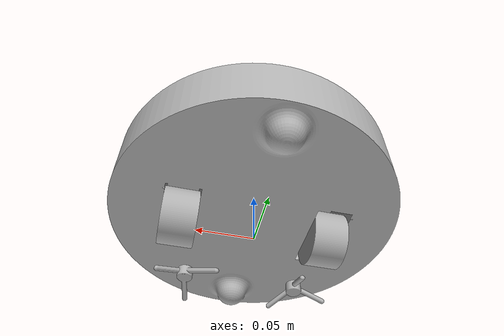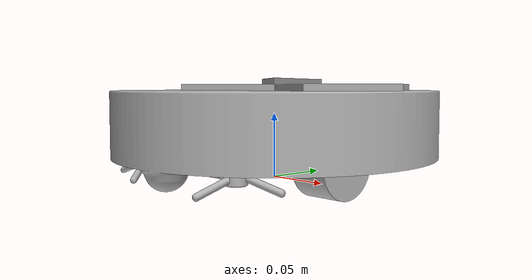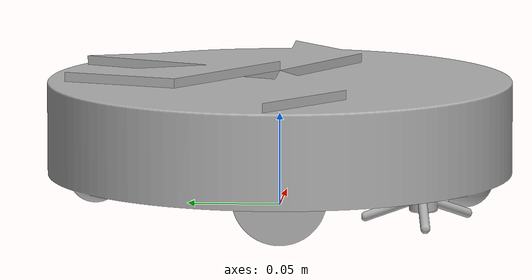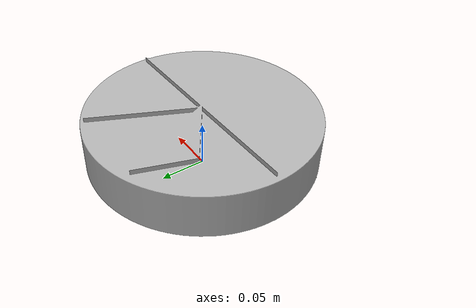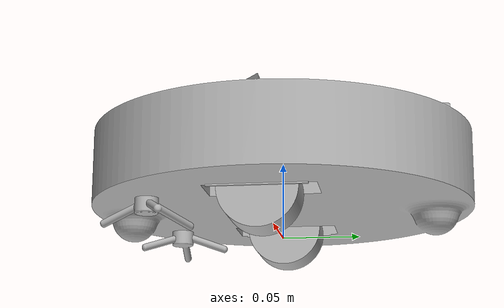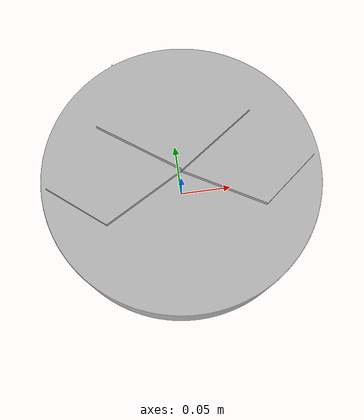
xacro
<?xml version="1.0" ?>
<robot name="cleaning_machine" xmlns:xacro="http://www.ros.org/wiki/xacro">

<xacro:include filename="$(find cleaning_machine_description)/urdf/materials.xacro" />
<xacro:include filename="$(find cleaning_machine_description)/urdf/cleaning_machine.trans" />
<xacro:include filename="$(find cleaning_machine_description)/urdf/cleaning_machine.gazebo" />
<link name="base_link">
  <inertial>
    <origin xyz="-0.0002906782630312663 0.0008339005906305713 0.04370232569637388" rpy="0 0 0"/>
    <mass value="18.427817429305076"/>
    <inertia ixx="0.081335" iyy="0.074758" izz="0.147554" ixy="-3.1e-05" iyz="-0.000223" ixz="0.000111"/>
  </inertial>
  <visual>
    <origin xyz="0 0 0" rpy="0 0 0"/>
    <geometry>
      <mesh filename="package://cleaning_machine_description/meshes/base_link.stl" scale="0.001 0.001 0.001"/>
    </geometry>
    <material name="silver"/>
  </visual>
  <collision>
    <origin xyz="0 0 0" rpy="0 0 0"/>
    <geometry>
      <mesh filename="package://cleaning_machine_description/meshes/base_link.stl" scale="0.001 0.001 0.001"/>
    </geometry>
  </collision>
</link>

<link name="left_clean_1">
  <inertial>
    <origin xyz="-0.0006167535496404142 0.0014443065357791635 -0.0072285411740625315" rpy="0 0 0"/>
    <mass value="0.026463243073747027"/>
    <inertia ixx="4e-06" iyy="4e-06" izz="6e-06" ixy="0.0" iyz="0.0" ixz="-0.0"/>
  </inertial>
  <visual>
    <origin xyz="-0.05 0.08 -0.018" rpy="0 0 0"/>
    <geometry>
      <mesh filename="package://cleaning_machine_description/meshes/left_clean_1.stl" scale="0.001 0.001 0.001"/>
    </geometry>
    <material name="silver"/>
  </visual>
  <collision>
    <origin xyz="-0.05 0.08 -0.018" rpy="0 0 0"/>
    <geometry>
      <mesh filename="package://cleaning_machine_description/meshes/left_clean_1.stl" scale="0.001 0.001 0.001"/>
    </geometry>
  </collision>
</link>

<link name="right_clean_1">
  <inertial>
    <origin xyz="-0.0008613498880776782 0.0006068353089816875 -0.0073194771257764114" rpy="0 0 0"/>
    <mass value="0.025786790240048048"/>
    <inertia ixx="3e-06" iyy="3e-06" izz="6e-06" ixy="1e-06" iyz="-0.0" ixz="-0.0"/>
  </inertial>
  <visual>
    <origin xyz="0.06 0.08 -0.018" rpy="0 0 0"/>
    <geometry>
      <mesh filename="package://cleaning_machine_description/meshes/right_clean_1.stl" scale="0.001 0.001 0.001"/>
    </geometry>
    <material name="silver"/>
  </visual>
  <collision>
    <origin xyz="0.06 0.08 -0.018" rpy="0 0 0"/>
    <geometry>
      <mesh filename="package://cleaning_machine_description/meshes/right_clean_1.stl" scale="0.001 0.001 0.001"/>
    </geometry>
  </collision>
</link>

<link name="left_wheel_1">
  <inertial>
    <origin xyz="-0.015000000000000013 7.845911210828393e-08 3.469446951953614e-18" rpy="0 0 0"/>
    <mass value="0.46240316870024756"/>
    <inertia ixx="0.000145" iyy="0.000107" izz="0.000107" ixy="0.0" iyz="0.0" ixz="-0.0"/>
  </inertial>
  <visual>
    <origin xyz="-0.08 0.005994 -0.0171" rpy="0 0 0"/>
    <geometry>
      <mesh filename="package://cleaning_machine_description/meshes/left_wheel_1.stl" scale="0.001 0.001 0.001"/>
    </geometry>
    <material name="silver"/>
  </visual>
  <collision>
    <origin xyz="-0.08 0.005994 -0.0171" rpy="0 0 0"/>
    <geometry>
      <mesh filename="package://cleaning_machine_description/meshes/left_wheel_1.stl" scale="0.001 0.001 0.001"/>
    </geometry>
  </collision>
</link>

<link name="right_wheel_1">
  <inertial>
    <origin xyz="0.015 5.449335406006173e-08 0.0" rpy="0 0 0"/>
    <mass value="0.46240316870024745"/>
    <inertia ixx="0.000145" iyy="0.000107" izz="0.000107" ixy="-0.0" iyz="-0.0" ixz="0.0"/>
  </inertial>
  <visual>
    <origin xyz="0.08 0.005583 -0.0171" rpy="0 0 0"/>
    <geometry>
      <mesh filename="package://cleaning_machine_description/meshes/right_wheel_1.stl" scale="0.001 0.001 0.001"/>
    </geometry>
    <material name="silver"/>
  </visual>
  <collision>
    <origin xyz="0.08 0.005583 -0.0171" rpy="0 0 0"/>
    <geometry>
      <mesh filename="package://cleaning_machine_description/meshes/right_wheel_1.stl" scale="0.001 0.001 0.001"/>
    </geometry>
  </collision>
</link>

<joint name="Revolute 5" type="continuous">
  <origin xyz="0.05 -0.08 0.018" rpy="0 0 0"/>
  <parent link="base_link"/>
  <child link="left_clean_1"/>
  <axis xyz="0.0 0.0 -1.0"/>
</joint>

<joint name="Revolute 6" type="continuous">
  <origin xyz="-0.06 -0.08 0.018" rpy="0 0 0"/>
  <parent link="base_link"/>
  <child link="right_clean_1"/>
  <axis xyz="0.0 0.0 -1.0"/>
</joint>

<joint name="Revolute 7" type="continuous">
  <origin xyz="0.08 -0.005994 0.0171" rpy="0 0 0"/>
  <parent link="base_link"/>
  <child link="left_wheel_1"/>
  <axis xyz="1.0 0.0 0.0"/>
</joint>

<joint name="Revolute 8" type="continuous">
  <origin xyz="-0.08 -0.005583 0.0171" rpy="0 0 0"/>
  <parent link="base_link"/>
  <child link="right_wheel_1"/>
  <axis xyz="1.0 0.0 0.0"/>
</joint>

</robot>

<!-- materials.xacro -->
<robot name="cleaning_machine" xmlns:xacro="http://www.ros.org/wiki/xacro" >

<material name="silver">
  <color rgba="0.700 0.700 0.700 1.000"/>
</material>

</robot>

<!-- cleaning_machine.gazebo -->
<robot name="cleaning_machine" xmlns:xacro="http://www.ros.org/wiki/xacro" >

<xacro:property name="body_color" value="Gazebo/Silver" />

<gazebo>
  <plugin name="control" filename="libgazebo_ros_control.so"/>
</gazebo>
<gazebo reference="base_link">
  <material>${body_color}</material>
  <mu1>0.01</mu1>
  <mu2>0.01</mu2>
  <selfCollide>true</selfCollide>
  <gravity>true</gravity>
</gazebo>

<gazebo reference="left_clean_1">
  <material>${body_color}</material>
  <mu1>0.2</mu1>
  <mu2>0.2</mu2>
  <selfCollide>true</selfCollide>
</gazebo>

<gazebo reference="right_clean_1">
  <material>${body_color}</material>
  <mu1>0.2</mu1>
  <mu2>0.2</mu2>
  <selfCollide>true</selfCollide>
</gazebo>

<gazebo reference="left_wheel_1">
  <material>${body_color}</material>
  <mu1>300</mu1>
  <mu2>300</mu2>
  <selfCollide>true</selfCollide>
</gazebo>

<gazebo reference="right_wheel_1">
  <material>${body_color}</material>
  <mu1>300</mu1>
  <mu2>300</mu2>
  <selfCollide>true</selfCollide>
</gazebo>

<gazebo>
  <plugin name="differential_drive_controller" filename="libgazebo_ros_diff_drive.so">

    <!-- Plugin update rate in Hz -->
    <updateRate>100</updateRate>

    <!-- Name of left joint, defaults to `left_joint` -->
    <leftJoint>Revolute 7</leftJoint>

    <!-- Name of right joint, defaults to `right_joint` -->
    <rightJoint>Revolute 8</rightJoint>

    <!-- The distance from the center of one wheel to the other, in meters, defaults to 0.34 m -->
    <wheelSeparation>0.1</wheelSeparation>

    <!-- Diameter of the wheels, in meters, defaults to 0.15 m -->
    <wheelDiameter>0.05</wheelDiameter>

    <!-- Wheel acceleration, in rad/s^2, defaults to 0.0 rad/s^2 -->
    <wheelAcceleration>1.0</wheelAcceleration>

    <!-- Maximum torque which the wheels can produce, in Nm, defaults to 5 Nm -->
    <wheelTorque>50</wheelTorque>

    <!-- Topic to receive geometry_msgs/Twist message commands, defaults to `cmd_vel` -->
    <commandTopic>cmd_vel</commandTopic>

    <!-- Topic to publish nav_msgs/Odometry messages, defaults to `odom` -->
    <odometryTopic>odom</odometryTopic>

    <!-- Odometry frame, defaults to `odom` -->
    <odometryFrame>odom</odometryFrame>

    <!-- Robot frame to calculate odometry from, defaults to `base_footprint` -->
    <robotBaseFrame>base_link</robotBaseFrame>

    <!-- Odometry source, 0 for ENCODER, 1 for WORLD, defaults to WORLD -->
    <odometrySource>1</odometrySource>

    <!-- Set to true to publish transforms for the wheel links, defaults to false -->
    <publishWheelTF>true</publishWheelTF>

    <!-- Set to true to publish transforms for the odometry, defaults to true -->
    <publishOdom>true</publishOdom>

    <!-- Set to true to publish sensor_msgs/JointState on /joint_states for the wheel joints, defaults to false -->
    <publishWheelJointState>true</publishWheelJointState>

    <!-- Set to true to swap right and left wheels, defaults to true -->
    <legacyMode>false</legacyMode>
  </plugin>
</gazebo>

<gazebo>
  <plugin name="brush_drive" filename="libgazebo_ros_diff_drive.so">
    <leftJoint>Revolute 5</leftJoint>
    <rightJoint>Revolute 6</rightJoint>
    <!-- given specific topic to control cleaning brushes -->
    <commandTopic>brush_cmd</commandTopic>

    <publishOdom>false</publishOdom>
    <publishWheelTF>false</publishWheelTF>
    <publishWheelJointState>false</publishWheelJointState>
  </plugin>
</gazebo>

<!-- hokuyo -->
  <gazebo reference="base_link">
    <sensor type="ray" name="head_hokuyo_sensor">
      <pose>0 0 0 0 0 -1.57</pose>
      <visualize>true</visualize>
      <update_rate>40</update_rate>
      <ray>
        <scan>
          <horizontal>
            <samples>720</samples>
            <resolution>1</resolution>
            <min_angle>-1.570796</min_angle>
            <max_angle>1.570796</max_angle>
          </horizontal>
        </scan>
        <range>
          <min>0.10</min>
          <max>30.0</max>
          <resolution>0.01</resolution>
        </range>
        <noise>
          <type>gaussian</type>
          <mean>0.0</mean>
          <stddev>0.01</stddev>
        </noise>
      </ray>
      <plugin name="gazebo_ros_head_hokuyo_controller" filename="libgazebo_ros_laser.so">
        <topicName>/scan</topicName>
        <frameName>base_link</frameName>
      </plugin>
    </sensor>
  </gazebo>

</robot>
